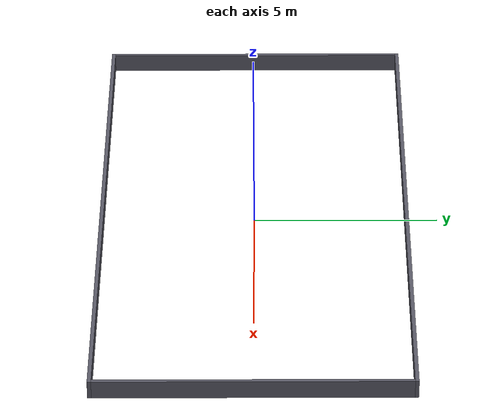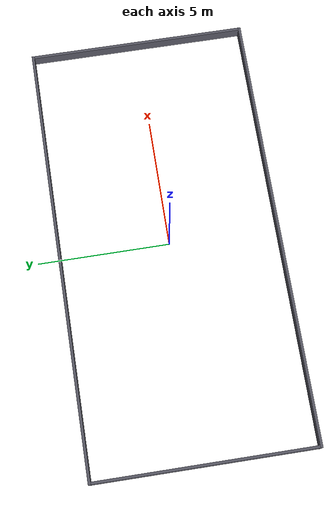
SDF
<sdf version="1.11">
 <world name="mars">
  <physics name="studio" type="ignored">
   <max_step_size>0.004</max_step_size>
   <real_time_factor>1</real_time_factor>
  </physics>
  <plugin filename="gz-sim-physics-system" name="gz::sim::systems::Physics"/>
  <plugin filename="gz-sim-scene-broadcaster-system" name="gz::sim::systems::SceneBroadcaster"/>
  <plugin filename="gz-sim-user-commands-system" name="gz::sim::systems::UserCommands"/>
  <gravity>0 0 -9.8</gravity>
  <scene>
   <ambient>0.75 0.75 0.75 1</ambient>
   <background>0.7 0.75 0.8 1</background>
   <shadows>true</shadows>
  </scene>
  <light type="directional" name="sun">
   <pose>0 0 10 0 0 0</pose>
   <diffuse>0.8 0.8 0.8 1</diffuse>
   <specular>0.2 0.2 0.2 1</specular>
   <direction>-0.5 0.1 -0.9</direction>
  </light>
  <model name="ground_plane">
   <static>true</static>
   <link name="link">
    <collision name="collision">
     <geometry><plane><normal>0 0 1</normal></plane></geometry>
     <surface><friction><ode><mu>0.9</mu><mu2>0.9</mu2></ode></friction></surface>
    </collision>
   </link>
  </model>
  <model name="field_walls">
   <static>true</static>
   <link name="link">
    <collision name="north_collision">
     <pose>0 4.155 0.25 0 0 0</pose>
     <geometry><box><size>16.74 0.1 0.5</size></box></geometry>
    </collision>
    <visual name="north_visual">
     <pose>0 4.155 0.25 0 0 0</pose>
     <geometry><box><size>16.74 0.1 0.5</size></box></geometry>
     <material><ambient>0.25 0.25 0.28 1</ambient><diffuse>0.35 0.35 0.4 1</diffuse></material>
    </visual>
    <collision name="south_collision">
     <pose>0 -4.155 0.25 0 0 0</pose>
     <geometry><box><size>16.74 0.1 0.5</size></box></geometry>
    </collision>
    <visual name="south_visual">
     <pose>0 -4.155 0.25 0 0 0</pose>
     <geometry><box><size>16.74 0.1 0.5</size></box></geometry>
     <material><ambient>0.25 0.25 0.28 1</ambient><diffuse>0.35 0.35 0.4 1</diffuse></material>
    </visual>
    <collision name="east_collision">
     <pose>8.32 0 0.25 0 0 0</pose>
     <geometry><box><size>0.1 8.21 0.5</size></box></geometry>
    </collision>
    <visual name="east_visual">
     <pose>8.32 0 0.25 0 0 0</pose>
     <geometry><box><size>0.1 8.21 0.5</size></box></geometry>
     <material><ambient>0.25 0.25 0.28 1</ambient><diffuse>0.35 0.35 0.4 1</diffuse></material>
    </visual>
    <collision name="west_collision">
     <pose>-8.32 0 0.25 0 0 0</pose>
     <geometry><box><size>0.1 8.21 0.5</size></box></geometry>
    </collision>
    <visual name="west_visual">
     <pose>-8.32 0 0.25 0 0 0</pose>
     <geometry><box><size>0.1 8.21 0.5</size></box></geometry>
     <material><ambient>0.25 0.25 0.28 1</ambient><diffuse>0.35 0.35 0.4 1</diffuse></material>
    </visual>
   </link>
  </model>
 </world>
</sdf>
